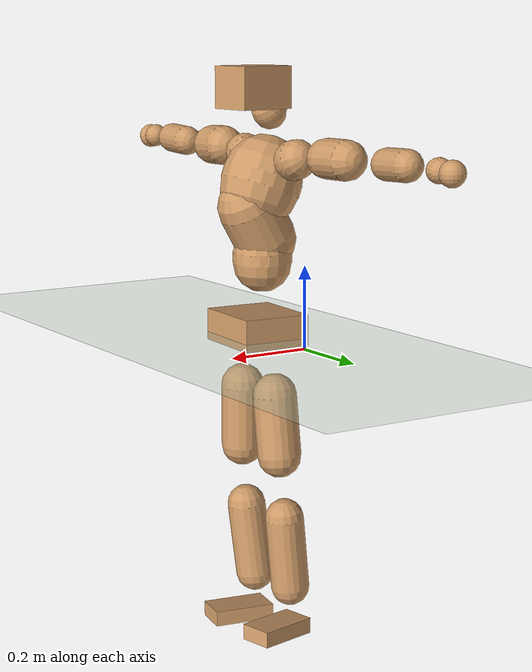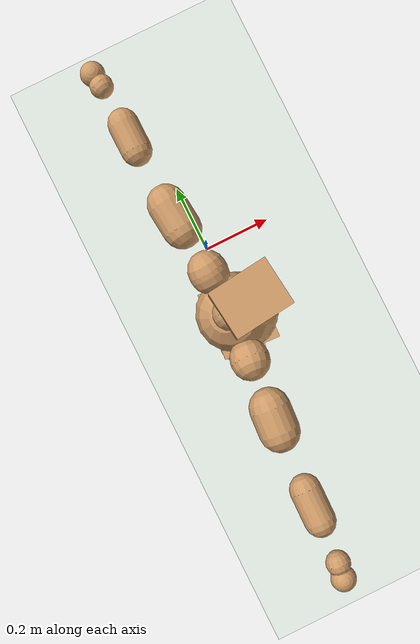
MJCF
<mujoco model="humanoid">
  <compiler coordinate="local" angle="radian"/>
  <default>
    <joint damping="0.0" armature="0.01" stiffness="0.0" limited="true"/>
    <geom conaffinity="1" condim="3" contype="7" margin="0.001" rgba="0.8 0.6 .4 1"/>
  </default>
  <asset>
    <texture type="skybox" builtin="gradient" rgb1=".4 .5 .6" rgb2="0 0 0" width="100" height="100"/>
    <texture builtin="flat" height="1278" mark="cross" markrgb="1 1 1" name="texgeom" random="0.01" rgb1="0.8 0.6 0.4" rgb2="0.8 0.6 0.4" type="cube" width="127"/>
    <texture builtin="checker" height="100" name="texplane" rgb1="0 0 0" rgb2="0.8 0.8 0.8" type="2d" width="100"/>
    <material name="MatPlane" reflectance="0.5" shininess="1" specular="1" texrepeat="60 60" texture="texplane"/>
    <material name="geom" texture="texgeom" texuniform="true"/>
  </asset>
  <worldbody>
    <light cutoff="100" diffuse="1 1 1" dir="-0 0 -1.3" directional="true" exponent="1" pos="0 0 1.3" specular=".1 .1 .1"/>
    <geom conaffinity="1" condim="3" name="floor" pos="0 0 0" rgba="0.8 0.9 0.8 1" size="100 100 .2" type="plane" material="MatPlane"/>
    <body name="Pelvis" pos="-0.0005 -0.2202 0.0305">
      <freejoint name="Pelvis"/>
      <geom type="box" contype="1" conaffinity="1" density="5359.375143" pos="-0.0047 0.0003 -0.0126" size="0.0856 0.1019 0.0393" quat="0.9996 0.0000 0.0000 -0.0265" name="Pelvis"/>
      <body name="L_Hip" pos="-0.0053 0.0674 -0.0881">
        <joint name="L_Hip_x" type="hinge" pos="0 0 0" axis="1 0 0" stiffness="1600" damping="160" armature="0.02" range="-180.0000 180.0000"/>
        <joint name="L_Hip_y" type="hinge" pos="0 0 0" axis="0 1 0" stiffness="1600" damping="160" armature="0.02" range="-180.0000 180.0000"/>
        <joint name="L_Hip_z" type="hinge" pos="0 0 0" axis="0 0 1" stiffness="1600" damping="160" armature="0.02" range="-180.0000 180.0000"/>
        <geom type="capsule" contype="1" conaffinity="1" density="2040.816327" size="0.0547" fromto="-0.0039 0.0059 -0.0844 -0.0108 0.0165 -0.2363" name="L_Hip"/>
        <body name="L_Knee" pos="-0.0147 0.0224 -0.3207">
          <joint name="L_Knee_x" type="hinge" pos="0 0 0" axis="1 0 0" stiffness="1600" damping="160" armature="0.02" range="-180.0000 180.0000"/>
          <joint name="L_Knee_y" type="hinge" pos="0 0 0" axis="0 1 0" stiffness="1600" damping="160" armature="0.02" range="-180.0000 180.0000"/>
          <joint name="L_Knee_z" type="hinge" pos="0 0 0" axis="0 0 1" stiffness="1600" damping="160" armature="0.02" range="-180.0000 180.0000"/>
          <geom type="capsule" contype="1" conaffinity="1" density="1234.567901" size="0.0485" fromto="-0.0089 -0.0027 -0.0779 -0.0302 -0.0091 -0.2633" name="L_Knee"/>
          <body name="L_Ankle" pos="-0.0391 -0.0118 -0.3412">
            <joint name="L_Ankle_x" type="hinge" pos="0 0 0" axis="1 0 0" stiffness="1600" damping="160" armature="0.02" range="-180.0000 180.0000"/>
            <joint name="L_Ankle_y" type="hinge" pos="0 0 0" axis="0 1 0" stiffness="1600" damping="160" armature="0.02" range="-180.0000 180.0000"/>
            <joint name="L_Ankle_z" type="hinge" pos="0 0 0" axis="0 0 1" stiffness="1600" damping="160" armature="0.02" range="-180.0000 180.0000"/>
            <geom type="box" contype="1" conaffinity="1" density="1000.000023" pos="0.0533 0.0106 -0.0250" size="0.0756 0.0436 0.0198" quat="0.9952 0.0000 0.0000 0.0982" name="L_Ankle"/>
            <body name="L_Toe" pos="0.1065 0.0212 -0.05">
              <joint name="L_Toe_x" type="hinge" pos="0 0 0" axis="1 0 0" stiffness="1000" damping="100" armature="0.02" range="-180.0000 180.0000"/>
              <joint name="L_Toe_y" type="hinge" pos="0 0 0" axis="0 1 0" stiffness="1000" damping="100" armature="0.02" range="-180.0000 180.0000"/>
              <joint name="L_Toe_z" type="hinge" pos="0 0 0" axis="0 0 1" stiffness="1000" damping="100" armature="0.02" range="-180.0000 180.0000"/>
              <geom type="box" contype="1" conaffinity="1" density="7958645.876877" pos="0.0000 0.0000 0.0241" size="0.0009 0.0022 0.0009" quat="0.9945 0.0000 0.0000 0.1052" name="L_Toe"/>
            </body>
          </body>
        </body>
      </body>
      <body name="R_Hip" pos="-0.0017 -0.0649 -0.0889">
        <joint name="R_Hip_x" type="hinge" pos="0 0 0" axis="1 0 0" stiffness="1600" damping="160" armature="0.02" range="-180.0000 180.0000"/>
        <joint name="R_Hip_y" type="hinge" pos="0 0 0" axis="0 1 0" stiffness="1600" damping="160" armature="0.02" range="-180.0000 180.0000"/>
        <joint name="R_Hip_z" type="hinge" pos="0 0 0" axis="0 0 1" stiffness="1600" damping="160" armature="0.02" range="-180.0000 180.0000"/>
        <geom type="capsule" contype="1" conaffinity="1" density="2040.816327" size="0.054" fromto="-0.0039 -0.0071 -0.0837 -0.0114 -0.0204 -0.2422" name="R_Hip"/>
        <body name="R_Knee" pos="-0.0154 -0.0275 -0.3258">
          <joint name="R_Knee_x" type="hinge" pos="0 0 0" axis="1 0 0" stiffness="1600" damping="160" armature="0.02" range="-180.0000 180.0000"/>
          <joint name="R_Knee_y" type="hinge" pos="0 0 0" axis="0 1 0" stiffness="1600" damping="160" armature="0.02" range="-180.0000 180.0000"/>
          <joint name="R_Knee_z" type="hinge" pos="0 0 0" axis="0 0 1" stiffness="1600" damping="160" armature="0.02" range="-180.0000 180.0000"/>
          <geom type="capsule" contype="1" conaffinity="1" density="1234.567901" size="0.0488" fromto="-0.0086 0.0032 -0.0783 -0.0293 0.0109 -0.2653" name="R_Knee"/>
          <body name="R_Ankle" pos="-0.0379 0.0141 -0.3436">
            <joint name="R_Ankle_x" type="hinge" pos="0 0 0" axis="1 0 0" stiffness="1600" damping="160" armature="0.02" range="-180.0000 180.0000"/>
            <joint name="R_Ankle_y" type="hinge" pos="0 0 0" axis="0 1 0" stiffness="1600" damping="160" armature="0.02" range="-180.0000 180.0000"/>
            <joint name="R_Ankle_z" type="hinge" pos="0 0 0" axis="0 0 1" stiffness="1600" damping="160" armature="0.02" range="-180.0000 180.0000"/>
            <geom type="box" contype="1" conaffinity="1" density="1000.000021" pos="0.0552 -0.0095 -0.0212" size="0.0781 0.0448 0.0192" quat="0.9964 0.0000 0.0000 -0.0848" name="R_Ankle"/>
            <body name="R_Toe" pos="0.1104 -0.0189 -0.0424">
              <joint name="R_Toe_x" type="hinge" pos="0 0 0" axis="1 0 0" stiffness="1000" damping="100" armature="0.02" range="-180.0000 180.0000"/>
              <joint name="R_Toe_y" type="hinge" pos="0 0 0" axis="0 1 0" stiffness="1000" damping="100" armature="0.02" range="-180.0000 180.0000"/>
              <joint name="R_Toe_z" type="hinge" pos="0 0 0" axis="0 0 1" stiffness="1000" damping="100" armature="0.02" range="-180.0000 180.0000"/>
              <geom type="box" contype="1" conaffinity="1" density="7637360.822794" pos="0.0000 0.0000 0.0226" size="0.001 0.0023 0.001" quat="0.9972 0.0000 0.0000 -0.0746" name="R_Toe"/>
            </body>
          </body>
        </body>
      </body>
      <body name="Torso" pos="-0.0214 -0.0009 0.1016">
        <joint name="Torso_x" type="hinge" pos="0 0 0" axis="1 0 0" stiffness="2000" damping="200" armature="0.02" range="-180.0000 180.0000"/>
        <joint name="Torso_y" type="hinge" pos="0 0 0" axis="0 1 0" stiffness="2000" damping="200" armature="0.02" range="-180.0000 180.0000"/>
        <joint name="Torso_z" type="hinge" pos="0 0 0" axis="0 0 1" stiffness="2000" damping="200" armature="0.02" range="-180.0000 180.0000"/>
        <geom type="capsule" contype="1" conaffinity="1" density="2040.816327" size="0.0732" fromto="0.0018 0.0015 0.0732 0.0012 0.0009 0.0466" name="Torso"/>
        <body name="Spine" pos="0.003 0.0024 0.1198">
          <joint name="Spine_x" type="hinge" pos="0 0 0" axis="1 0 0" stiffness="2000" damping="200" armature="0.02" range="-180.0000 180.0000"/>
          <joint name="Spine_y" type="hinge" pos="0 0 0" axis="0 1 0" stiffness="2000" damping="200" armature="0.02" range="-180.0000 180.0000"/>
          <joint name="Spine_z" type="hinge" pos="0 0 0" axis="0 0 1" stiffness="2000" damping="200" armature="0.02" range="-180.0000 180.0000"/>
          <geom type="capsule" contype="1" conaffinity="1" density="2040.816327" size="0.0768" fromto="0.0396 0.0029 0.0657 -0.0097 -0.0007 -0.0161" name="Spine"/>
          <body name="Chest" pos="0.0299 0.0022 0.0496">
            <joint name="Chest_x" type="hinge" pos="0 0 0" axis="1 0 0" stiffness="2000" damping="200" armature="0.02" range="-180.0000 180.0000"/>
            <joint name="Chest_y" type="hinge" pos="0 0 0" axis="0 1 0" stiffness="2000" damping="200" armature="0.02" range="-180.0000 180.0000"/>
            <joint name="Chest_z" type="hinge" pos="0 0 0" axis="0 0 1" stiffness="2000" damping="200" armature="0.02" range="-180.0000 180.0000"/>
            <geom type="capsule" contype="1" conaffinity="1" density="2040.816327" size="0.0987" fromto="-0.0340 -0.0008 0.0926 -0.0227 -0.0005 0.0618" name="Chest"/>
            <body name="Neck" pos="-0.0722 -0.0014 0.2164">
              <joint name="Neck_x" type="hinge" pos="0 0 0" axis="1 0 0" stiffness="1000" damping="100" armature="0.02" range="-180.0000 180.0000"/>
              <joint name="Neck_y" type="hinge" pos="0 0 0" axis="0 1 0" stiffness="1000" damping="100" armature="0.02" range="-180.0000 180.0000"/>
              <joint name="Neck_z" type="hinge" pos="0 0 0" axis="0 0 1" stiffness="1000" damping="100" armature="0.02" range="-180.0000 180.0000"/>
              <geom type="capsule" contype="1" conaffinity="1" density="1000" size="0.0408" fromto="0.0256 0.0019 0.0317 0.0206 0.0015 0.0255" name="Neck"/>
              <body name="Head" pos="0.0461 0.0035 0.0572">
                <joint name="Head_x" type="hinge" pos="0 0 0" axis="1 0 0" stiffness="1000" damping="100" armature="0.02" range="-180.0000 180.0000"/>
                <joint name="Head_y" type="hinge" pos="0 0 0" axis="0 1 0" stiffness="1000" damping="100" armature="0.02" range="-180.0000 180.0000"/>
                <joint name="Head_z" type="hinge" pos="0 0 0" axis="0 0 1" stiffness="1000" damping="100" armature="0.02" range="-180.0000 180.0000"/>
                <geom type="box" contype="1" conaffinity="1" density="2250.000057" pos="0.0241 0.0027 0.0296" size="0.0712 0.0577 0.051" quat="0.9984 0.0000 0.0000 0.0565" name="Head"/>
              </body>
            </body>
            <body name="L_Thorax" pos="-0.0473 0.0727 0.1239">
              <joint name="L_Thorax_x" type="hinge" pos="0 0 0" axis="1 0 0" stiffness="1000" damping="100" armature="0.02" range="-180.0000 180.0000"/>
              <joint name="L_Thorax_y" type="hinge" pos="0 0 0" axis="0 1 0" stiffness="1000" damping="100" armature="0.02" range="-180.0000 180.0000"/>
              <joint name="L_Thorax_z" type="hinge" pos="0 0 0" axis="0 0 1" stiffness="1000" damping="100" armature="0.02" range="-180.0000 180.0000"/>
              <geom type="capsule" contype="1" conaffinity="1" density="1000" size="0.0485" fromto="-0.0039 0.0465 0.0130 -0.0030 0.0348 0.0097" name="L_Thorax"/>
              <body name="L_Shoulder" pos="-0.0069 0.0814 0.0227">
                <joint name="L_Shoulder_x" type="hinge" pos="0 0 0" axis="1 0 0" stiffness="1000" damping="100" armature="0.02" range="-720.0000 720.0000"/>
                <joint name="L_Shoulder_y" type="hinge" pos="0 0 0" axis="0 1 0" stiffness="1000" damping="100" armature="0.02" range="-720.0000 720.0000"/>
                <joint name="L_Shoulder_z" type="hinge" pos="0 0 0" axis="0 0 1" stiffness="1000" damping="100" armature="0.02" range="-720.0000 720.0000"/>
                <geom type="capsule" contype="1" conaffinity="1" density="1000" size="0.0478" fromto="-0.0071 0.0775 0.0002 -0.0137 0.1482 0.0004" name="L_Shoulder"/>
                <body name="L_Elbow" pos="-0.0208 0.2257 0.0007">
                  <joint name="L_Elbow_x" type="hinge" pos="0 0 0" axis="1 0 0" stiffness="1000" damping="100" armature="0.02" range="-720.0000 720.0000"/>
                  <joint name="L_Elbow_y" type="hinge" pos="0 0 0" axis="0 1 0" stiffness="1000" damping="100" armature="0.02" range="-720.0000 720.0000"/>
                  <joint name="L_Elbow_z" type="hinge" pos="0 0 0" axis="0 0 1" stiffness="1000" damping="100" armature="0.02" range="-720.0000 720.0000"/>
                  <geom type="capsule" contype="1" conaffinity="1" density="1000" size="0.0375" fromto="-0.0003 0.0675 0.0018 -0.0007 0.1392 0.0038" name="L_Elbow"/>
                  <body name="L_Wrist" pos="-0.001 0.2067 0.0056">
                    <joint name="L_Wrist_x" type="hinge" pos="0 0 0" axis="1 0 0" stiffness="600" damping="60" armature="0.02" range="-180.0000 180.0000"/>
                    <joint name="L_Wrist_y" type="hinge" pos="0 0 0" axis="0 1 0" stiffness="600" damping="60" armature="0.02" range="-180.0000 180.0000"/>
                    <joint name="L_Wrist_z" type="hinge" pos="0 0 0" axis="0 0 1" stiffness="600" damping="60" armature="0.02" range="-180.0000 180.0000"/>
                    <geom type="capsule" contype="1" conaffinity="1" density="1000" size="0.0287" fromto="-0.0059 0.0362 -0.0041 -0.0062 0.0382 -0.0044" name="L_Wrist"/>
                    <body name="L_Hand" pos="-0.0121 0.0744 -0.0085">
                      <joint name="L_Hand_x" type="hinge" pos="0 0 0" axis="1 0 0" stiffness="600" damping="60" armature="0.02" range="-180.0000 180.0000"/>
                      <joint name="L_Hand_y" type="hinge" pos="0 0 0" axis="0 1 0" stiffness="600" damping="60" armature="0.02" range="-180.0000 180.0000"/>
                      <joint name="L_Hand_z" type="hinge" pos="0 0 0" axis="0 0 1" stiffness="600" damping="60" armature="0.02" range="-180.0000 180.0000"/>
                      <geom type="sphere" contype="1" conaffinity="1" density="1000" size="0.0302" pos="0.0000 0.0000 0.0000" name="L_Hand"/>
                    </body>
                  </body>
                </body>
              </body>
            </body>
            <body name="R_Thorax" pos="-0.0507 -0.0753 0.1228">
              <joint name="R_Thorax_x" type="hinge" pos="0 0 0" axis="1 0 0" stiffness="1000" damping="100" armature="0.02" range="-180.0000 180.0000"/>
              <joint name="R_Thorax_y" type="hinge" pos="0 0 0" axis="0 1 0" stiffness="1000" damping="100" armature="0.02" range="-180.0000 180.0000"/>
              <joint name="R_Thorax_z" type="hinge" pos="0 0 0" axis="0 0 1" stiffness="1000" damping="100" armature="0.02" range="-180.0000 180.0000"/>
              <geom type="capsule" contype="1" conaffinity="1" density="1000" size="0.0481" fromto="-0.0047 -0.0456 0.0146 -0.0040 -0.0383 0.0122" name="R_Thorax"/>
              <body name="R_Shoulder" pos="-0.0087 -0.0839 0.0268">
                <joint name="R_Shoulder_x" type="hinge" pos="0 0 0" axis="1 0 0" stiffness="1000" damping="100" armature="0.02" range="-720.0000 720.0000"/>
                <joint name="R_Shoulder_y" type="hinge" pos="0 0 0" axis="0 1 0" stiffness="1000" damping="100" armature="0.02" range="-720.0000 720.0000"/>
                <joint name="R_Shoulder_z" type="hinge" pos="0 0 0" axis="0 0 1" stiffness="1000" damping="100" armature="0.02" range="-720.0000 720.0000"/>
                <geom type="capsule" contype="1" conaffinity="1" density="1000" size="0.0499" fromto="-0.0052 -0.0797 -0.0029 -0.0093 -0.1413 -0.0051" name="R_Shoulder"/>
                <body name="R_Elbow" pos="-0.0145 -0.221 -0.0079">
                  <joint name="R_Elbow_x" type="hinge" pos="0 0 0" axis="1 0 0" stiffness="1000" damping="100" armature="0.02" range="-720.0000 720.0000"/>
                  <joint name="R_Elbow_y" type="hinge" pos="0 0 0" axis="0 1 0" stiffness="1000" damping="100" armature="0.02" range="-720.0000 720.0000"/>
                  <joint name="R_Elbow_z" type="hinge" pos="0 0 0" axis="0 0 1" stiffness="1000" damping="100" armature="0.02" range="-720.0000 720.0000"/>
                  <geom type="capsule" contype="1" conaffinity="1" density="1000" size="0.0382" fromto="-0.0013 -0.0681 0.0028 -0.0028 -0.1494 0.0060" name="R_Elbow"/>
                  <body name="R_Wrist" pos="-0.0041 -0.2175 0.0088">
                    <joint name="R_Wrist_x" type="hinge" pos="0 0 0" axis="1 0 0" stiffness="600" damping="60" armature="0.02" range="-180.0000 180.0000"/>
                    <joint name="R_Wrist_y" type="hinge" pos="0 0 0" axis="0 1 0" stiffness="600" damping="60" armature="0.02" range="-180.0000 180.0000"/>
                    <joint name="R_Wrist_z" type="hinge" pos="0 0 0" axis="0 0 1" stiffness="600" damping="60" armature="0.02" range="-180.0000 180.0000"/>
                    <geom type="capsule" contype="1" conaffinity="1" density="1000" size="0.0298" fromto="-0.0048 -0.0372 -0.0033 -0.0050 -0.0392 -0.0034" name="R_Wrist"/>
                    <body name="R_Hand" pos="-0.0098 -0.0764 -0.0067">
                      <joint name="R_Hand_x" type="hinge" pos="0 0 0" axis="1 0 0" stiffness="600" damping="60" armature="0.02" range="-180.0000 180.0000"/>
                      <joint name="R_Hand_y" type="hinge" pos="0 0 0" axis="0 1 0" stiffness="600" damping="60" armature="0.02" range="-180.0000 180.0000"/>
                      <joint name="R_Hand_z" type="hinge" pos="0 0 0" axis="0 0 1" stiffness="600" damping="60" armature="0.02" range="-180.0000 180.0000"/>
                      <geom type="sphere" contype="1" conaffinity="1" density="1000" size="0.0310" pos="0.0000 0.0000 0.0000" name="R_Hand"/>
                    </body>
                  </body>
                </body>
              </body>
            </body>
          </body>
        </body>
      </body>
    </body>
  </worldbody>
  <actuator>
    <motor name="L_Hip_x" joint="L_Hip_x" gear="500"/>
    <motor name="L_Hip_y" joint="L_Hip_y" gear="500"/>
    <motor name="L_Hip_z" joint="L_Hip_z" gear="500"/>
    <motor name="L_Knee_x" joint="L_Knee_x" gear="500"/>
    <motor name="L_Knee_y" joint="L_Knee_y" gear="500"/>
    <motor name="L_Knee_z" joint="L_Knee_z" gear="500"/>
    <motor name="L_Ankle_x" joint="L_Ankle_x" gear="500"/>
    <motor name="L_Ankle_y" joint="L_Ankle_y" gear="500"/>
    <motor name="L_Ankle_z" joint="L_Ankle_z" gear="500"/>
    <motor name="L_Toe_x" joint="L_Toe_x" gear="500"/>
    <motor name="L_Toe_y" joint="L_Toe_y" gear="500"/>
    <motor name="L_Toe_z" joint="L_Toe_z" gear="500"/>
    <motor name="R_Hip_x" joint="R_Hip_x" gear="500"/>
    <motor name="R_Hip_y" joint="R_Hip_y" gear="500"/>
    <motor name="R_Hip_z" joint="R_Hip_z" gear="500"/>
    <motor name="R_Knee_x" joint="R_Knee_x" gear="500"/>
    <motor name="R_Knee_y" joint="R_Knee_y" gear="500"/>
    <motor name="R_Knee_z" joint="R_Knee_z" gear="500"/>
    <motor name="R_Ankle_x" joint="R_Ankle_x" gear="500"/>
    <motor name="R_Ankle_y" joint="R_Ankle_y" gear="500"/>
    <motor name="R_Ankle_z" joint="R_Ankle_z" gear="500"/>
    <motor name="R_Toe_x" joint="R_Toe_x" gear="500"/>
    <motor name="R_Toe_y" joint="R_Toe_y" gear="500"/>
    <motor name="R_Toe_z" joint="R_Toe_z" gear="500"/>
    <motor name="Torso_x" joint="Torso_x" gear="500"/>
    <motor name="Torso_y" joint="Torso_y" gear="500"/>
    <motor name="Torso_z" joint="Torso_z" gear="500"/>
    <motor name="Spine_x" joint="Spine_x" gear="500"/>
    <motor name="Spine_y" joint="Spine_y" gear="500"/>
    <motor name="Spine_z" joint="Spine_z" gear="500"/>
    <motor name="Chest_x" joint="Chest_x" gear="500"/>
    <motor name="Chest_y" joint="Chest_y" gear="500"/>
    <motor name="Chest_z" joint="Chest_z" gear="500"/>
    <motor name="Neck_x" joint="Neck_x" gear="500"/>
    <motor name="Neck_y" joint="Neck_y" gear="500"/>
    <motor name="Neck_z" joint="Neck_z" gear="500"/>
    <motor name="Head_x" joint="Head_x" gear="500"/>
    <motor name="Head_y" joint="Head_y" gear="500"/>
    <motor name="Head_z" joint="Head_z" gear="500"/>
    <motor name="L_Thorax_x" joint="L_Thorax_x" gear="500"/>
    <motor name="L_Thorax_y" joint="L_Thorax_y" gear="500"/>
    <motor name="L_Thorax_z" joint="L_Thorax_z" gear="500"/>
    <motor name="L_Shoulder_x" joint="L_Shoulder_x" gear="500"/>
    <motor name="L_Shoulder_y" joint="L_Shoulder_y" gear="500"/>
    <motor name="L_Shoulder_z" joint="L_Shoulder_z" gear="500"/>
    <motor name="L_Elbow_x" joint="L_Elbow_x" gear="500"/>
    <motor name="L_Elbow_y" joint="L_Elbow_y" gear="500"/>
    <motor name="L_Elbow_z" joint="L_Elbow_z" gear="500"/>
    <motor name="L_Wrist_x" joint="L_Wrist_x" gear="500"/>
    <motor name="L_Wrist_y" joint="L_Wrist_y" gear="500"/>
    <motor name="L_Wrist_z" joint="L_Wrist_z" gear="500"/>
    <motor name="L_Hand_x" joint="L_Hand_x" gear="500"/>
    <motor name="L_Hand_y" joint="L_Hand_y" gear="500"/>
    <motor name="L_Hand_z" joint="L_Hand_z" gear="500"/>
    <motor name="R_Thorax_x" joint="R_Thorax_x" gear="500"/>
    <motor name="R_Thorax_y" joint="R_Thorax_y" gear="500"/>
    <motor name="R_Thorax_z" joint="R_Thorax_z" gear="500"/>
    <motor name="R_Shoulder_x" joint="R_Shoulder_x" gear="500"/>
    <motor name="R_Shoulder_y" joint="R_Shoulder_y" gear="500"/>
    <motor name="R_Shoulder_z" joint="R_Shoulder_z" gear="500"/>
    <motor name="R_Elbow_x" joint="R_Elbow_x" gear="500"/>
    <motor name="R_Elbow_y" joint="R_Elbow_y" gear="500"/>
    <motor name="R_Elbow_z" joint="R_Elbow_z" gear="500"/>
    <motor name="R_Wrist_x" joint="R_Wrist_x" gear="500"/>
    <motor name="R_Wrist_y" joint="R_Wrist_y" gear="500"/>
    <motor name="R_Wrist_z" joint="R_Wrist_z" gear="500"/>
    <motor name="R_Hand_x" joint="R_Hand_x" gear="500"/>
    <motor name="R_Hand_y" joint="R_Hand_y" gear="500"/>
    <motor name="R_Hand_z" joint="R_Hand_z" gear="500"/>
  </actuator>
  <contact>
    <exclude body1="Torso" body2="Chest"/>
    <exclude body1="Head" body2="Chest"/>
    <exclude body1="R_Knee" body2="R_Toe"/>
    <exclude body1="R_Knee" body2="L_Ankle"/>
    <exclude body1="R_Knee" body2="L_Toe"/>
    <exclude body1="L_Knee" body2="L_Toe"/>
    <exclude body1="L_Knee" body2="R_Ankle"/>
    <exclude body1="L_Knee" body2="R_Toe"/>
    <exclude body1="L_Shoulder" body2="Chest"/>
    <exclude body1="R_Shoulder" body2="Chest"/>
  </contact>
  <sensor/>
  <size njmax="700" nconmax="700"/>
</mujoco>
